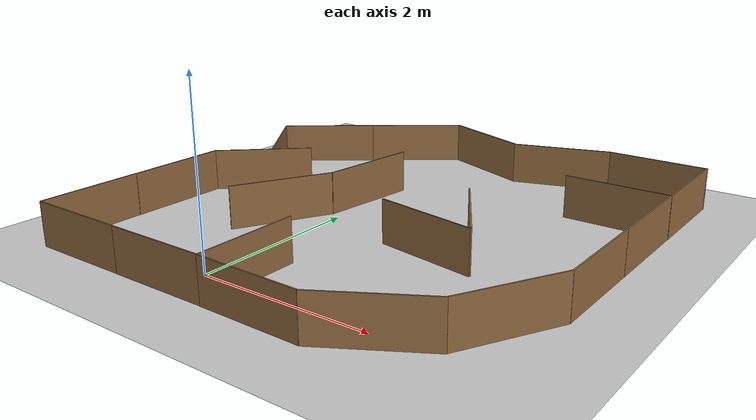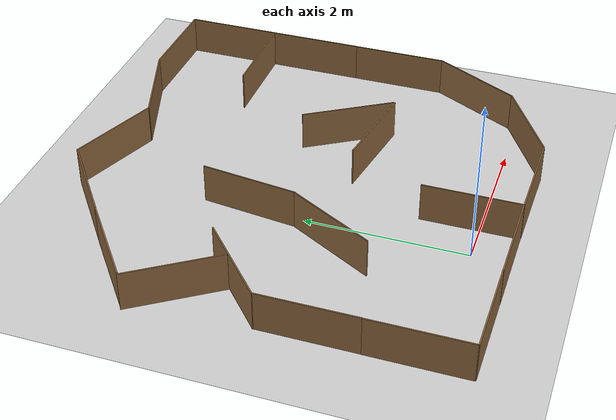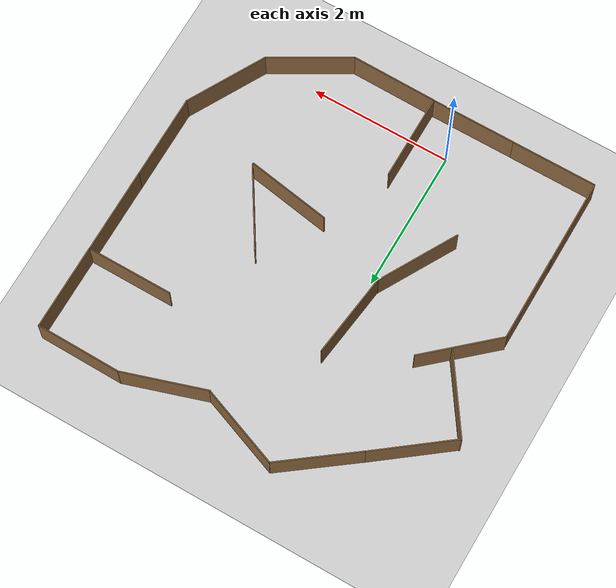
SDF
<sdf version="1.6">
 <world name="default">
  <model name="ground_plane">
   <static>1</static>
   <link name="link">
    <collision name="collision">
     <geometry><plane><normal>0 0 1</normal><size>100 100</size></plane></geometry>
     <surface><friction><ode><mu>100</mu><mu2>50</mu2></ode></friction></surface>
    </collision>
    <visual name="visual">
     <cast_shadows>0</cast_shadows>
     <geometry><plane><normal>0 0 1</normal><size>100 100</size></plane></geometry>
     <material>
      <script><uri>file://media/materials/scripts/gazebo.material</uri><name>Gazebo/Grey</name></script>
     </material>
    </visual>
   </link>
  </model>
  <light name="sun" type="directional">
   <pose>0 0 10 0 -0 0</pose>
   <diffuse>0.8 0.8 0.8 1</diffuse>
   <specular>0.1 0.1 0.1 1</specular>
   <attenuation>
    <range>1000</range>
    <constant>0.9</constant>
    <linear>0.01</linear>
    <quadratic>0.001</quadratic>
   </attenuation>
   <direction>-0.5 0.5 -1</direction>
  </light>
  <model name="wall_0">
   <pose>-1.908932 0.129803 0 0 -0 0</pose>
   <static>1</static>
   <link name="papptown_wall::link">
    <pose>0 0 0.25 0 -0 0</pose>
    <collision name="collision"><geometry><box><size>0.015 1.2 0.5</size></box></geometry></collision>
    <visual name="visual">
     <geometry><box><size>0.015 1.2 0.5</size></box></geometry>
     <material>
      <ambient>0.5 0.5 0.5 1</ambient>
      <diffuse>0.57 0.417 0.25 1</diffuse>
      <specular>0.1 0.1 0.1 1</specular>
      <emissive>0 0 0 0</emissive>
     </material>
    </visual>
   </link>
  </model>
  <model name="wall_1">
   <pose>-1.906503 1.32541 0 0 -0 0</pose>
   <static>1</static>
   <link name="papptown_wall::link">
    <pose>0 0 0.25 0 -0 0</pose>
    <collision name="collision"><geometry><box><size>0.015 1.2 0.5</size></box></geometry></collision>
    <visual name="visual">
     <geometry><box><size>0.015 1.2 0.5</size></box></geometry>
     <material>
      <ambient>0.5 0.5 0.5 1</ambient>
      <diffuse>0.57 0.417 0.25 1</diffuse>
      <specular>0.1 0.1 0.1 1</specular>
      <emissive>0 0 0 0</emissive>
     </material>
    </visual>
   </link>
  </model>
  <model name="wall_2">
   <pose>-1.31036 -0.471372 0 0 -0 1.571</pose>
   <static>1</static>
   <link name="papptown_wall::link">
    <pose>0 0 0.25 0 -0 0</pose>
    <collision name="collision"><geometry><box><size>0.015 1.2 0.5</size></box></geometry></collision>
    <visual name="visual">
     <geometry><box><size>0.015 1.2 0.5</size></box></geometry>
     <material>
      <ambient>0.5 0.5 0.5 1</ambient>
      <diffuse>0.57 0.417 0.25 1</diffuse>
      <specular>0.1 0.1 0.1 1</specular>
      <emissive>0 0 0 0</emissive>
     </material>
    </visual>
   </link>
  </model>
  <model name="wall_3">
   <pose>-0.11385 -0.47283 0 0 -0 1.571</pose>
   <static>1</static>
   <link name="papptown_wall::link">
    <pose>0 0 0.25 0 -0 0</pose>
    <collision name="collision"><geometry><box><size>0.015 1.2 0.5</size></box></geometry></collision>
    <visual name="visual">
     <geometry><box><size>0.015 1.2 0.5</size></box></geometry>
     <material>
      <ambient>0.5 0.5 0.5 1</ambient>
      <diffuse>0.57 0.417 0.25 1</diffuse>
      <specular>0.1 0.1 0.1 1</specular>
      <emissive>0 0 0 0</emissive>
     </material>
    </visual>
   </link>
  </model>
  <model name="wall_4">
   <pose>2.19273 -0.194333 0 0 -0 2.094</pose>
   <static>1</static>
   <link name="papptown_wall::link">
    <pose>0 0 0.25 0 -0 0</pose>
    <collision name="collision"><geometry><box><size>0.015 1.2 0.5</size></box></geometry></collision>
    <visual name="visual">
     <geometry><box><size>0.015 1.2 0.5</size></box></geometry>
     <material>
      <ambient>0.5 0.5 0.5 1</ambient>
      <diffuse>0.57 0.417 0.25 1</diffuse>
      <specular>0.1 0.1 0.1 1</specular>
      <emissive>0 0 0 0</emissive>
     </material>
    </visual>
   </link>
  </model>
  <gravity>0 0 -9.8</gravity>
  <magnetic_field>6e-06 2.3e-05 -4.2e-05</magnetic_field>
  <atmosphere type="adiabatic"/>
  <physics name="default_physics" default="0" type="ode">
   <max_step_size>0.001</max_step_size>
   <real_time_factor>1</real_time_factor>
   <real_time_update_rate>1000</real_time_update_rate>
  </physics>
  <scene><ambient>0.4 0.4 0.4 1</ambient><background>0.7 0.7 0.7 1</background><shadows>1</shadows></scene>
  <spherical_coordinates>
   <surface_model>EARTH_WGS84</surface_model>
   <latitude_deg>0</latitude_deg>
   <longitude_deg>0</longitude_deg>
   <elevation>0</elevation>
   <heading_deg>0</heading_deg>
  </spherical_coordinates>
  <model name="papptown_wall">
   <pose>2.99213 0.632201 0 0 0 -0.496041</pose>
   <static>1</static>
   <link name="link">
    <pose>0 0 0.25 0 -0 0</pose>
    <collision name="collision"><geometry><box><size>0.015 1.2 0.5</size></box></geometry></collision>
    <visual name="visual">
     <geometry><box><size>0.015 1.2 0.5</size></box></geometry>
     <material>
      <ambient>0.5 0.5 0.5 1</ambient>
      <diffuse>0.57 0.417 0.25 1</diffuse>
      <specular>0.1 0.1 0.1 1</specular>
      <emissive>0 0 0 0</emissive>
     </material>
    </visual>
   </link>
  </model>
  <model name="papptown_wall_0">
   <pose>3.27717 1.75486 0 0 -0 0</pose>
   <static>1</static>
   <link name="link">
    <pose>0 0 0.25 0 -0 0</pose>
    <collision name="collision"><geometry><box><size>0.015 1.2 0.5</size></box></geometry></collision>
    <visual name="visual">
     <geometry><box><size>0.015 1.2 0.5</size></box></geometry>
     <material>
      <ambient>0.5 0.5 0.5 1</ambient>
      <diffuse>0.57 0.417 0.25 1</diffuse>
      <specular>0.1 0.1 0.1 1</specular>
      <emissive>0 0 0 0</emissive>
     </material>
    </visual>
   </link>
  </model>
  <model name="papptown_wall_1">
   <pose>3.27813 2.95004 0 0 -0 0</pose>
   <static>1</static>
   <link name="link">
    <pose>0 0 0.25 0 -0 0</pose>
    <collision name="collision"><geometry><box><size>0.015 1.2 0.5</size></box></geometry></collision>
    <visual name="visual">
     <geometry><box><size>0.015 1.2 0.5</size></box></geometry>
     <material>
      <ambient>0.5 0.5 0.5 1</ambient>
      <diffuse>0.57 0.417 0.25 1</diffuse>
      <specular>0.1 0.1 0.1 1</specular>
      <emissive>0 0 0 0</emissive>
     </material>
    </visual>
   </link>
  </model>
  <model name="papptown_wall_2">
   <pose>3.2802 4.1509 0 0 -0 0</pose>
   <static>1</static>
   <link name="link">
    <pose>0 0 0.25 0 -0 0</pose>
    <collision name="collision"><geometry><box><size>0.015 1.2 0.5</size></box></geometry></collision>
    <visual name="visual">
     <geometry><box><size>0.015 1.2 0.5</size></box></geometry>
     <material>
      <ambient>0.5 0.5 0.5 1</ambient>
      <diffuse>0.57 0.417 0.25 1</diffuse>
      <specular>0.1 0.1 0.1 1</specular>
      <emissive>0 0 0 0</emissive>
     </material>
    </visual>
   </link>
  </model>
  <model name="papptown_wall_3">
   <pose>2.68918 4.76256 0 0 -0 1.55804</pose>
   <static>1</static>
   <link name="link">
    <pose>0 0 0.25 0 -0 0</pose>
    <collision name="collision"><geometry><box><size>0.015 1.2 0.5</size></box></geometry></collision>
    <visual name="visual">
     <geometry><box><size>0.015 1.2 0.5</size></box></geometry>
     <material>
      <ambient>0.5 0.5 0.5 1</ambient>
      <diffuse>0.57 0.417 0.25 1</diffuse>
      <specular>0.1 0.1 0.1 1</specular>
      <emissive>0 0 0 0</emissive>
     </material>
    </visual>
   </link>
  </model>
  <model name="papptown_wall_4">
   <pose>1.52656 4.58769 0 0 0 -1.25968</pose>
   <static>1</static>
   <link name="link">
    <pose>0 0 0.25 0 -0 0</pose>
    <collision name="collision"><geometry><box><size>0.015 1.2 0.5</size></box></geometry></collision>
    <visual name="visual">
     <geometry><box><size>0.015 1.2 0.5</size></box></geometry>
     <material>
      <ambient>0.5 0.5 0.5 1</ambient>
      <diffuse>0.57 0.417 0.25 1</diffuse>
      <specular>0.1 0.1 0.1 1</specular>
      <emissive>0 0 0 0</emissive>
     </material>
    </visual>
   </link>
  </model>
  <model name="papptown_wall_6">
   <pose>0.40415 4.62139 0 0 -0 1.20901</pose>
   <static>1</static>
   <link name="link">
    <pose>0 0 0.25 0 -0 0</pose>
    <collision name="collision"><geometry><box><size>0.015 1.2 0.5</size></box></geometry></collision>
    <visual name="visual">
     <geometry><box><size>0.015 1.2 0.5</size></box></geometry>
     <material>
      <ambient>0.5 0.5 0.5 1</ambient>
      <diffuse>0.57 0.417 0.25 1</diffuse>
      <specular>0.1 0.1 0.1 1</specular>
      <emissive>0 0 0 0</emissive>
     </material>
    </visual>
   </link>
  </model>
  <model name="papptown_wall_7">
   <pose>-1.468225 2.31791 0 0 0 -0.838971</pose>
   <static>1</static>
   <link name="link">
    <pose>0 0 0.25 0 -0 0</pose>
    <collision name="collision"><geometry><box><size>0.015 1.2 0.5</size></box></geometry></collision>
    <visual name="visual">
     <geometry><box><size>0.015 1.2 0.5</size></box></geometry>
     <material>
      <ambient>0.5 0.5 0.5 1</ambient>
      <diffuse>0.57 0.417 0.25 1</diffuse>
      <specular>0.1 0.1 0.1 1</specular>
      <emissive>0 0 0 0</emissive>
     </material>
    </visual>
   </link>
  </model>
  <model name="papptown_wall_8">
   <pose>-1.732862 2.89135 -0.009289 0 -0 0.602379</pose>
   <static>1</static>
   <link name="link">
    <pose>0 0 0.25 0 -0 0</pose>
    <collision name="collision"><geometry><box><size>0.015 1.2 0.5</size></box></geometry></collision>
    <visual name="visual">
     <geometry><box><size>0.015 1.2 0.5</size></box></geometry>
     <material>
      <ambient>0.5 0.5 0.5 1</ambient>
      <diffuse>0.57 0.417 0.25 1</diffuse>
      <specular>0.1 0.1 0.1 1</specular>
      <emissive>0 0 0 0</emissive>
     </material>
    </visual>
   </link>
  </model>
  <model name="papptown_wall_9">
   <pose>-0.63104 4.47149 0 0 0 -0.92579</pose>
   <static>1</static>
   <link name="link">
    <pose>0 0 0.25 0 -0 0</pose>
    <collision name="collision"><geometry><box><size>0.015 1.2 0.5</size></box></geometry></collision>
    <visual name="visual">
     <geometry><box><size>0.015 1.2 0.5</size></box></geometry>
     <material>
      <ambient>0.5 0.5 0.5 1</ambient>
      <diffuse>0.57 0.417 0.25 1</diffuse>
      <specular>0.1 0.1 0.1 1</specular>
      <emissive>0 0 0 0</emissive>
     </material>
    </visual>
   </link>
  </model>
  <model name="papptown_wall_10">
   <pose>-1.586482 3.74568 0 0 0 -0.913867</pose>
   <static>1</static>
   <link name="link">
    <pose>0 0 0.25 0 -0 0</pose>
    <collision name="collision"><geometry><box><size>0.015 1.2 0.5</size></box></geometry></collision>
    <visual name="visual">
     <geometry><box><size>0.015 1.2 0.5</size></box></geometry>
     <material>
      <ambient>0.5 0.5 0.5 1</ambient>
      <diffuse>0.57 0.417 0.25 1</diffuse>
      <specular>0.1 0.1 0.1 1</specular>
      <emissive>0 0 0 0</emissive>
     </material>
    </visual>
   </link>
  </model>
  <model name="papptown_wall_11">
   <pose>0.47454 0.129601 0 0 -0 0</pose>
   <static>1</static>
   <link name="link">
    <pose>0 0 0.25 0 -0 0</pose>
    <collision name="collision"><geometry><box><size>0.015 1.2 0.5</size></box></geometry></collision>
    <visual name="visual">
     <geometry><box><size>0.015 1.2 0.5</size></box></geometry>
     <material>
      <ambient>0.5 0.5 0.5 1</ambient>
      <diffuse>0.57 0.417 0.25 1</diffuse>
      <specular>0.1 0.1 0.1 1</specular>
      <emissive>0 0 0 0</emissive>
     </material>
    </visual>
   </link>
  </model>
  <model name="papptown_wall_12">
   <pose>2.67466 3.55304 0 0 -0 1.56875</pose>
   <static>1</static>
   <link name="link">
    <pose>0 0 0.25 0 -0 0</pose>
    <collision name="collision"><geometry><box><size>0.015 1.2 0.5</size></box></geometry></collision>
    <visual name="visual">
     <geometry><box><size>0.015 1.2 0.5</size></box></geometry>
     <material>
      <ambient>0.5 0.5 0.5 1</ambient>
      <diffuse>0.57 0.417 0.25 1</diffuse>
      <specular>0.1 0.1 0.1 1</specular>
      <emissive>0 0 0 0</emissive>
     </material>
    </visual>
   </link>
  </model>
  <model name="papptown_wall_13">
   <pose>-0.42102 1.54719 0 0 0 -0.505883</pose>
   <static>1</static>
   <link name="link">
    <pose>0 0 0.25 0 -0 0</pose>
    <collision name="collision"><geometry><box><size>0.015 1.2 0.5</size></box></geometry></collision>
    <visual name="visual">
     <geometry><box><size>0.015 1.2 0.5</size></box></geometry>
     <material>
      <ambient>0.5 0.5 0.5 1</ambient>
      <diffuse>0.57 0.417 0.25 1</diffuse>
      <specular>0.1 0.1 0.1 1</specular>
      <emissive>0 0 0 0</emissive>
     </material>
    </visual>
   </link>
  </model>
  <model name="papptown_wall_14">
   <pose>-0.05342 2.66339 0 0 0 -0.123846</pose>
   <static>1</static>
   <link name="link">
    <pose>0 0 0.25 0 -0 0</pose>
    <collision name="collision"><geometry><box><size>0.015 1.2 0.5</size></box></geometry></collision>
    <visual name="visual">
     <geometry><box><size>0.015 1.2 0.5</size></box></geometry>
     <material>
      <ambient>0.5 0.5 0.5 1</ambient>
      <diffuse>0.57 0.417 0.25 1</diffuse>
      <specular>0.1 0.1 0.1 1</specular>
      <emissive>0 0 0 0</emissive>
     </material>
    </visual>
   </link>
  </model>
  <model name="papptown_wall_15">
   <pose>1.48118 1.58183 0 0 0 -1.73706</pose>
   <static>1</static>
   <link name="link">
    <pose>0 0 0.25 0 -0 0</pose>
    <collision name="collision"><geometry><box><size>0.015 1.2 0.5</size></box></geometry></collision>
    <visual name="visual">
     <geometry><box><size>0.015 1.2 0.5</size></box></geometry>
     <material>
      <ambient>0.5 0.5 0.5 1</ambient>
      <diffuse>0.57 0.417 0.25 1</diffuse>
      <specular>0.1 0.1 0.1 1</specular>
      <emissive>0 0 0 0</emissive>
     </material>
    </visual>
   </link>
  </model>
  <model name="papptown_wall_16">
   <pose>1.75673 2.00188 0 0 -0 0.561862</pose>
   <static>1</static>
   <link name="link">
    <pose>0 0 0.25 0 -0 0</pose>
    <collision name="collision"><geometry><box><size>0.015 1.2 0.5</size></box></geometry></collision>
    <visual name="visual">
     <geometry><box><size>0.015 1.2 0.5</size></box></geometry>
     <material>
      <ambient>0.5 0.5 0.5 1</ambient>
      <diffuse>0.57 0.417 0.25 1</diffuse>
      <specular>0.1 0.1 0.1 1</specular>
      <emissive>0 0 0 0</emissive>
     </material>
    </visual>
   </link>
  </model>
  <model name="papptown_wall_17">
   <pose>1.07406 -0.483414 0 0 -0 1.55682</pose>
   <static>1</static>
   <link name="link">
    <pose>0 0 0.25 0 -0 0</pose>
    <collision name="collision"><geometry><box><size>0.015 1.2 0.5</size></box></geometry></collision>
    <visual name="visual">
     <geometry><box><size>0.015 1.2 0.5</size></box></geometry>
     <material>
      <ambient>0.5 0.5 0.5 1</ambient>
      <diffuse>0.57 0.417 0.25 1</diffuse>
      <specular>0.1 0.1 0.1 1</specular>
      <emissive>0 0 0 0</emissive>
     </material>
    </visual>
   </link>
  </model>
 </world>
</sdf>
